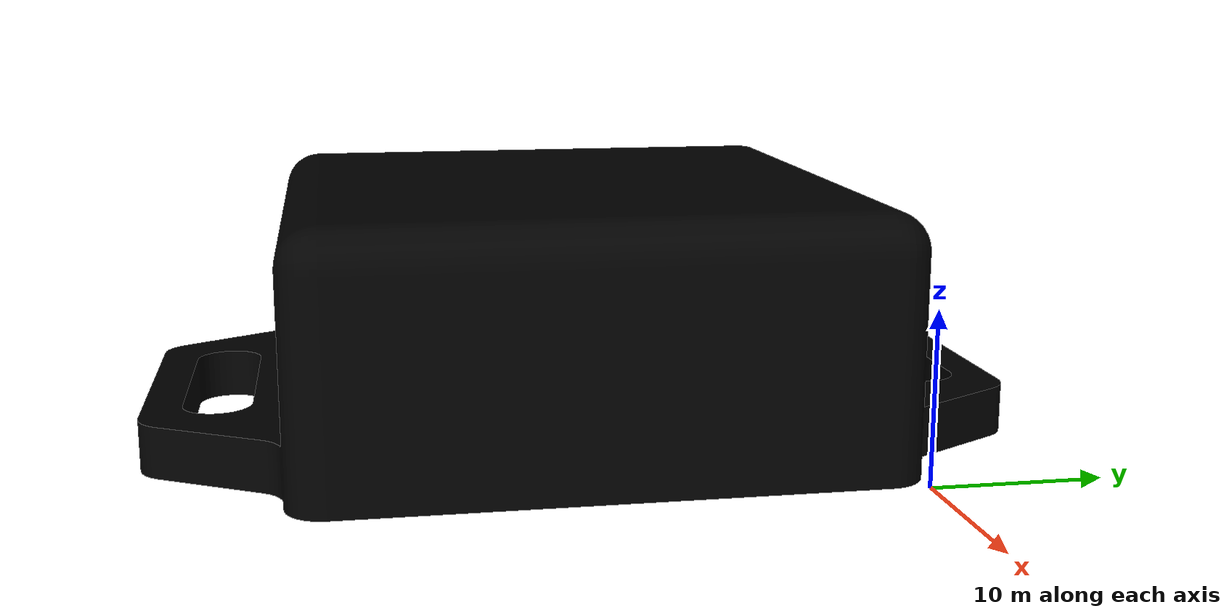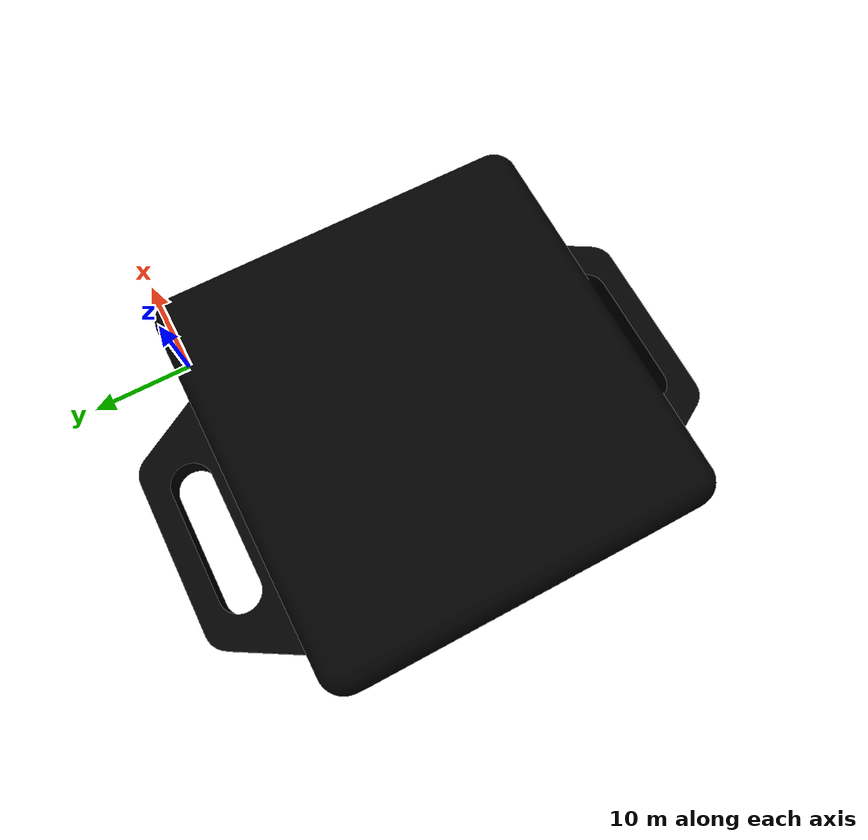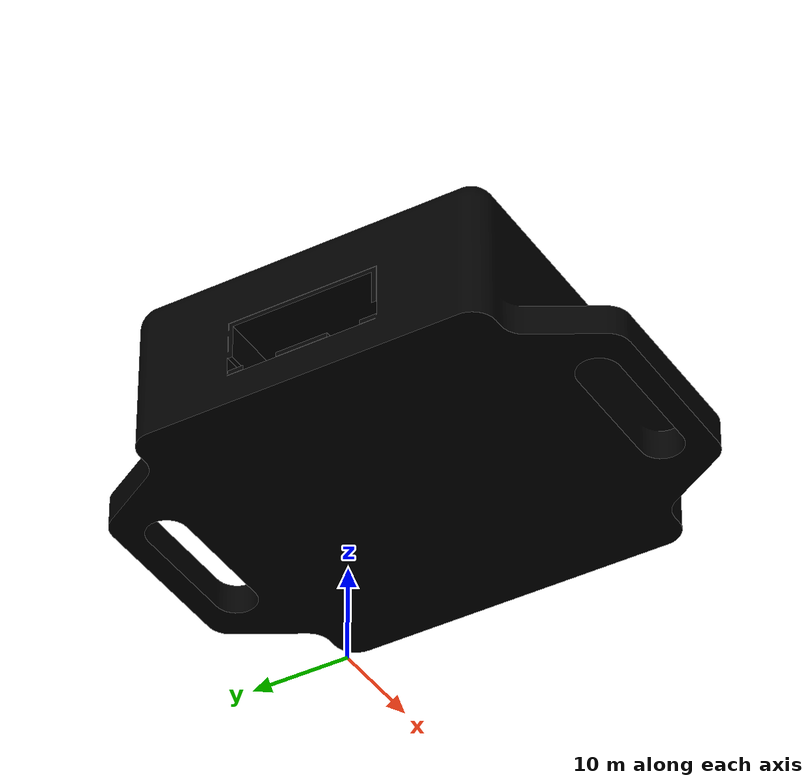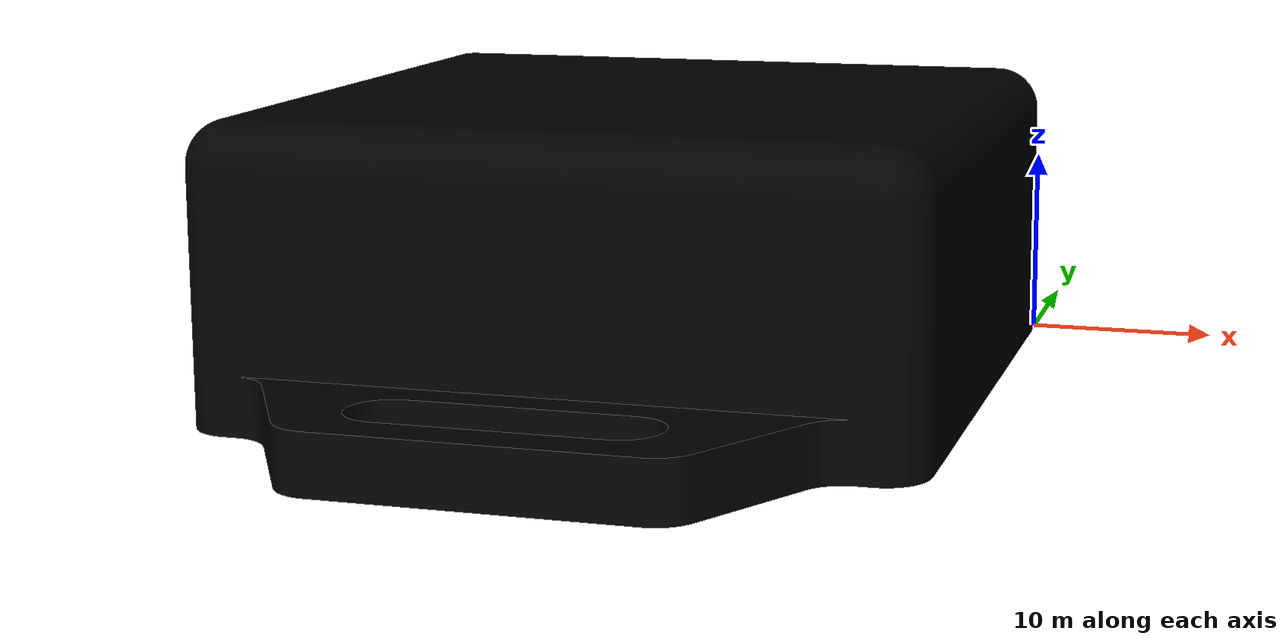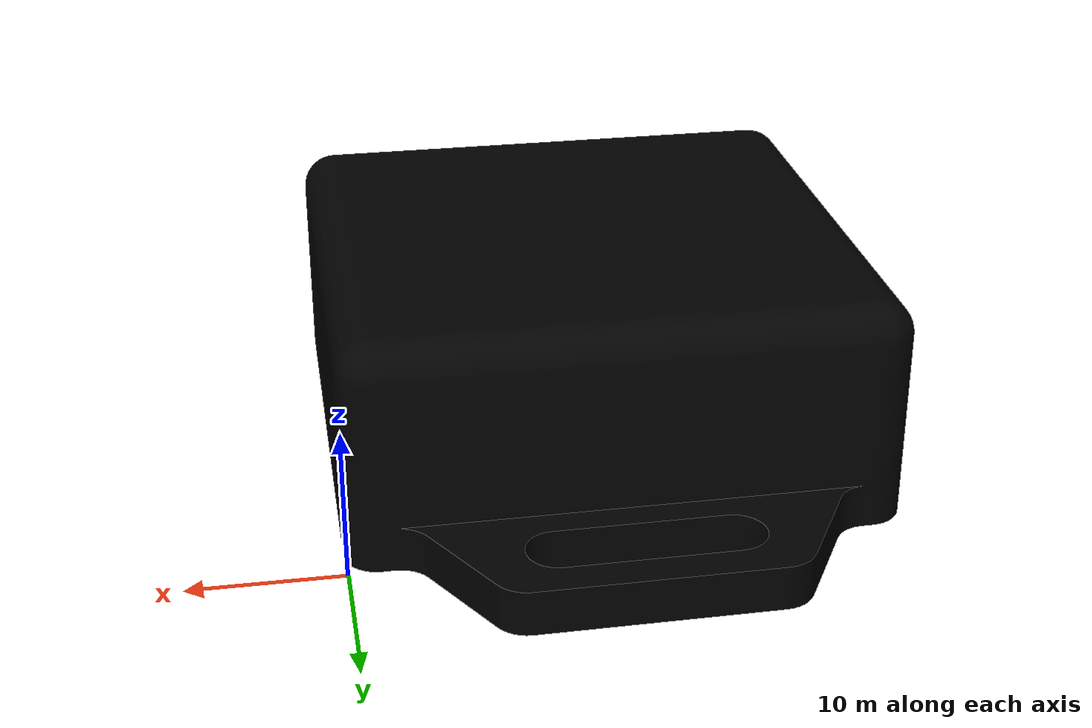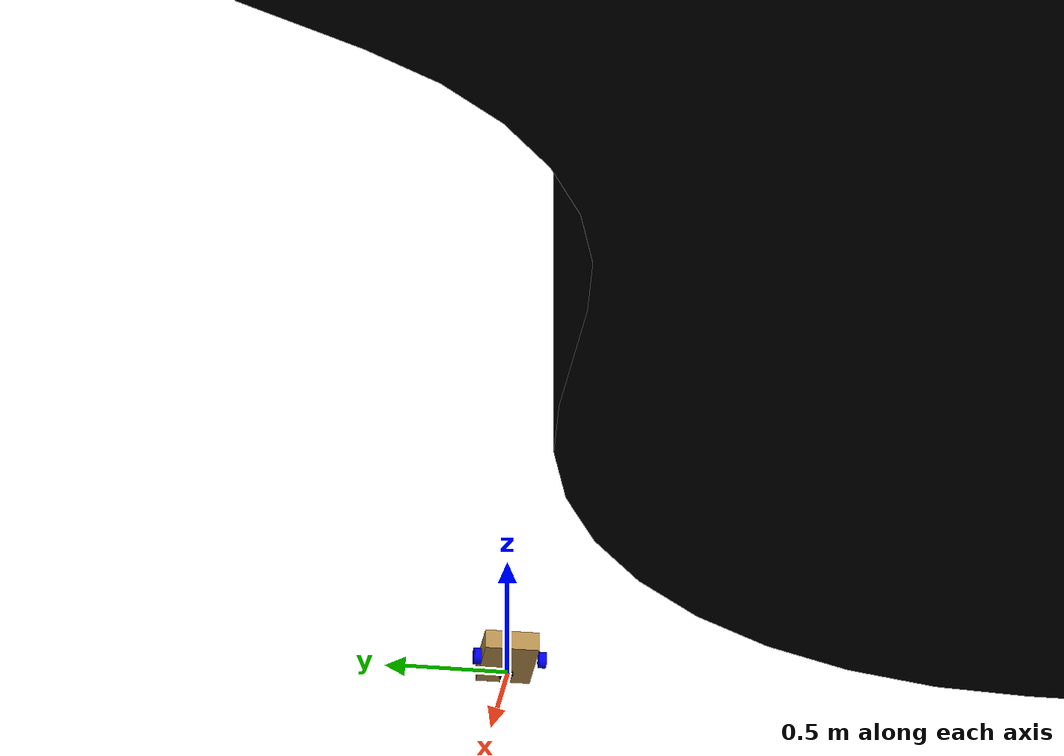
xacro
<?xml version="1.0"?>

<robot xmlns:xacro="http://www.ros.org/wiki/xacro" name="diffbot">

    <!--                           COLOR DEFINITIONS                          -->
    <material name="white">
        <color rgba="1 1 1 1" />
    </material>

    <material name="orange">
        <color rgba="1 0.3 0.1 1"/>
    </material>

    <material name="blue">
        <color rgba="0 0 1 1"/>
    </material>

    <material name="black">
        <color rgba="0 0 0 1"/>
    </material>

    <material name="brown">
        <color rgba="0.7 0.55 0.3 1"/>
    </material>

    <!--                          ARGUMENT DEFINITIONS                        -->

    <!-- ROS2 VERSION -->
    <xacro:arg name="is_ignition" default="true"/>

    <!-- START SIMULATION OR REAL ROBOT -->
    <xacro:arg name="is_sim" default="true"/>

    <!--                        XACRO FILE DEPENDENCIES                       -->

    <!-- INCLUDE INERTIAL MACROS -->
    <xacro:include filename="$(find diffbot_description)/urdf/inertial_macros.xacro"/>

    <!-- GAZEBO -->
    <xacro:include filename="$(find diffbot_description)/urdf/diffbot_gazebo.xacro"/>

    <!-- ROS2 CONTROL -->
    <xacro:include filename="$(find diffbot_description)/urdf/diffbot_ros2_control.xacro"/>

    <!--                        GEOMETRY AND CONSTANTS                        -->

    <!-- Pi constant -->
    <xacro:property name="pi_const" value="3.14159265"/>

    <!-- Body dimensions -->
    <xacro:property name="a" value="0.3"/>
    <xacro:property name="b" value="0.08"/>
    <xacro:property name="c" value="0.22"/>
    <xacro:property name="w" value="0.005"/>

    <!-- Wheels dimensions -->
    <xacro:property name="r" value="0.033"/>
    <xacro:property name="d" value="0.03"/>
    <xacro:property name="offset_1" value="0.0125"/>
    <xacro:property name="offset_2" value="0.0075"/>

    <xacro:property name="s1" value="${b/2+r}"/>
    <xacro:property name="s2" value="${2*r}"/>
    <xacro:property name="s3" value="${2*r}"/>
    <xacro:property name="s4" value="${c/2+d/2+offset_2}"/>

    <!-- Wheels dimensions -->
    <xacro:property name="imu_side" value="0.035"/>
    <xacro:property name="imu_width" value="0.018"/>
    <xacro:property name="imu_x_off" value="0.005"/>
    <xacro:property name="imu_y_off" value="0.025"/>

    <!--                            MASS AND INERTIA                          -->

    <!-- Body material density -->
    <xacro:property name="d1" value="600"/>
    <!-- Wheel material density -->
    <xacro:property name="d2" value="2710.0"/>
    <!-- Caster wheel material density -->
    <xacro:property name="d3" value="2710.0"/>

    <!-- Body mass -->
    <xacro:property name="m_base" value="${d1*a*c*w}"/>
    <xacro:property name="m_wall_1" value="${d1*b*c*w}"/>
    <xacro:property name="m_wall_2" value="${d1*a*b*w}"/>
    <xacro:property name="m1" value="${2*m_base + 2*m_wall_1 + 2*m_wall_2}"/>
    <!-- Wheel mass -->
    <xacro:property name="m2" value="0.1"/>
    <!-- Caster wheel mass -->
    <xacro:property name="m3" value="0.2"/>

    <!-- Body moments of inertia -->
    <xacro:property name="Ix_body" value="${(1.0/12.0)*m1*(b*b+c*c)}"/>
    <xacro:property name="Iy_body" value="${(1.0/12.0)*m1*(a*a+b*b)}"/>
    <xacro:property name="Iz_body" value="${(1.0/12.0)*m1*(a*a+c*c)}"/>
    <!-- Wheel moments of inertia -->
    <xacro:property name="Iz_wheel" value="${0.5*m2*r*r}"/>
    <xacro:property name="I_wheel" value="${(1.0/12.0)*m2*(3.0*r*r+d*d)}"/>
    <!-- Caster wheel moments of inertia -->
    <xacro:property name="I_caster" value="${(2.0/5.0)*m3*r*r}"/>

    <!-- Body inertial macro -->
    <xacro:macro name="inertia_body">
        <inertial>
            <origin xyz="0 0 ${s1}" rpy="0 0 0"/>
            <mass value="${m1}"/>
            <inertia ixx="${Ix_body}" ixy="0.0" ixz="0.0" iyy="${Iy_body}" iyz="0.0" izz="${Iz_body}" />
        </inertial>
    </xacro:macro>
    <!-- Wheel inertial macro -->
    <xacro:macro name="inertia_wheel">
        <inertial>
            <origin xyz="0 0 0" rpy="1.570795 0 0"/>
            <mass value="${m2}"/>
            <inertia ixx="${I_wheel}" ixy="0.0" ixz="0.0" iyy="${I_wheel}" iyz="0.0" izz="${Iz_wheel}" />
        </inertial>
    </xacro:macro>
    <!-- Caster wheel inertial macro -->
    <xacro:macro name="inertia_caster">
        <inertial>
            <origin xyz="0 0 0" rpy="0 0 0"/>
            <mass value="${m3}"/>
            <inertia ixx="${I_caster}" ixy="0.0" ixz="0.0" iyy="${I_caster}" iyz="0.0" izz="${I_caster}" />
        </inertial>
    </xacro:macro>

    <!--                           DIFFBOT URDF MODEL                         -->

    <!-- BASE FOOTPRINT -->
    <link name="base_link"/>

    <!-- BODY -->
    <joint name="body_joint" type="fixed">
        <parent link="base_link"/>
        <child link="body_link"/>
    </joint>

    <link name="body_link">
        <visual>
            <origin xyz="0 0 ${s1}" rpy="0 0 0"/>
            <geometry>
                <box size="${a} ${c} ${b}"/>
            </geometry>
            <material name="brown"/>
        </visual>

        <collision>
            <geometry>
                <box size="${a} ${c} ${b}"/>
            </geometry>
        </collision>

        <xacro:inertia_body />
    </link>

    <!-- LEFT WHEEL -->
    <joint name="left_wheel_joint" type="continuous">
        <parent link="body_link"/>
        <child link="left_wheel"/>
        <origin xyz="${-s2} ${-s4} ${r}" rpy="0 0 0" />
        <axis xyz="0 1 0"/>
        <limit effort="50000" velocity="10"/>
        <dynamics damping="1.0" friction="1.0"/>
    </joint>

    <link name="left_wheel">
        <visual>
            <origin xyz="0 0 0" rpy="1.570795 0 0" />
            <geometry>
                <cylinder radius="${r}" length="${d}"/>
            </geometry>
            <material name="blue"/>
        </visual>

        <collision>
            <geometry>
                <cylinder radius="${r}" length="${d}"/>
            </geometry>
        </collision>

        <xacro:inertia_wheel/>
    </link>

    <!-- RIGHT WHEEL -->
    <joint name="right_wheel_joint" type="continuous">
        <parent link="body_link"/>
        <child link="right_wheel"/>
        <origin xyz="${-s2} ${s4} ${r}" rpy="0 0 0" />
        <axis xyz="0 1 0"/>
        <limit effort="50000" velocity="10"/>
        <dynamics damping="1.0" friction="1.0"/>
    </joint>

    <link name="right_wheel">
        <visual>
            <origin xyz="0 0 0" rpy="1.570795 0 0" />
            <geometry>
                <cylinder radius="${r}" length="${d}"/>
            </geometry>
            <material name="blue"/>
        </visual>

        <collision>
            <geometry>
                <cylinder radius="${r}" length="${d}"/>
            </geometry>
        </collision>

        <xacro:inertia_wheel/>
    </link>

    <!-- CASTER WHEEL -->
    <joint name="caster_wheel_joint" type="fixed">
        <parent link="body_link"/>
        <child link="caster_wheel"/>
        <origin xyz="${s2} 0 ${r}"/>
    </joint>

    <link name="caster_wheel">
        <visual>
            <geometry>
                <sphere radius="${r}"/>
            </geometry>
            <material name="black"/>
        </visual>

        <collision>
            <geometry>
                <sphere radius="${r}"/>
            </geometry>
        </collision>

        <xacro:inertia_caster/>
    </link>

    <!-- IMU -->
    <link name="imu_link">
        <inertial>
            <origin xyz="0.0175 0.0175 0" rpy="0 0 0"/>
            <mass value="0.000528415"/>
            <inertia ixx="1.4617E-08" ixy="1.4E-10" ixz="-1.9963E-12"
                    iyy="1.4617E-08" iyz="7.5237E-12"
                    izz="2.3027E-08"/>
        </inertial>
        <visual>
            <origin xyz="0.0175 0.0175 0" rpy="${pi/2} 0 ${pi}"/>
            <geometry>
                <mesh filename="package://diffbot_description/meshes/WT901C.stl"/>
            </geometry>
            <material name="black"/>
        </visual>
        <collision>
            <origin xyz="0.0175 0.0175 0" rpy="0 0 0"/>
            <geometry>
                <mesh filename="package://diffbot_description/meshes/WT901C.stl"/>
            </geometry>
        </collision>
    </link>

    <joint name="imu_joint" type="fixed">
        <origin xyz="${a/2 - imu_x_off - imu_side/2} ${c/2 - imu_y_off - imu_side/2} ${b/2+s1}" rpy="0 0 0" />
        <parent link="body_link"/>
        <child link="imu_link"/>
        <axis xyz="0 0 0"/>
    </joint>
</robot>
